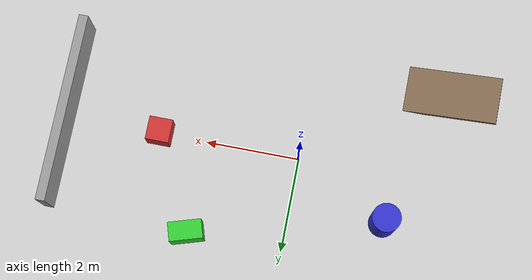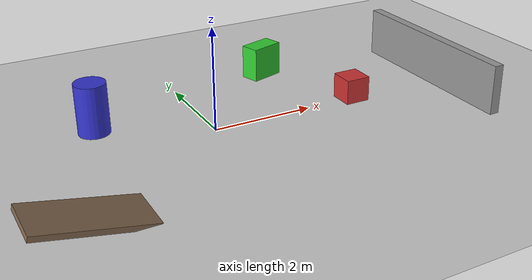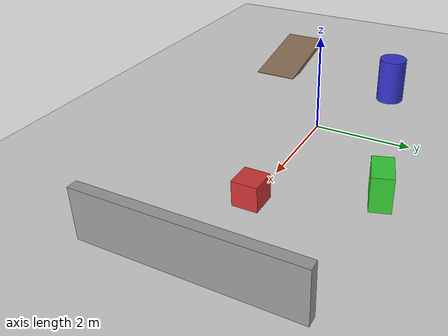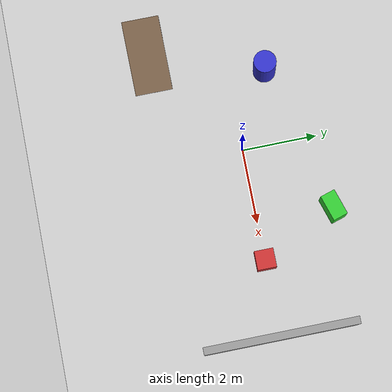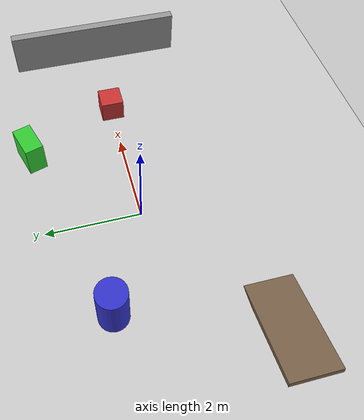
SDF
<?xml version="1.0" ?>
<sdf version="1.6">
  <world name="go2_outdoor_world">

    <!-- Physics settings optimized for legged robots -->
    <physics type="ode">
      <max_step_size>0.002</max_step_size>
      <real_time_factor>1</real_time_factor>
      <real_time_update_rate>500</real_time_update_rate>
      <ode>
        <solver>
          <type>quick</type>
          <iters>50</iters>
          <sor>1.3</sor>
        </solver>
        <constraints>
          <cfm>0.0</cfm>
          <erp>0.2</erp>
          <contact_max_correcting_vel>100</contact_max_correcting_vel>
          <contact_surface_layer>0.001</contact_surface_layer>
        </constraints>
      </ode>
    </physics>

    <!-- Lighting -->
    <include>
      <uri>model://sun</uri>
    </include>

    <!-- Ground Plane -->
    <include>
      <uri>model://ground_plane</uri>
    </include>

    <!-- Scene settings -->
    <scene>
      <ambient>0.5 0.5 0.5 1</ambient>
      <background>0.3 0.5 0.8 1</background>
      <shadows>true</shadows>
      <sky>
        <clouds>
          <speed>12</speed>
        </clouds>
      </sky>
    </scene>

    <!-- Gravity -->
    <gravity>0 0 -9.81</gravity>

    <!-- OBSTACLES                                                    -->

    <!-- Box obstacle 1 -->
    <model name="box1">
      <static>true</static>
      <pose>3 0 0.25 0 0 0</pose>
      <link name="link">
        <collision name="collision">
          <geometry>
            <box>
              <size>0.5 0.5 0.5</size>
            </box>
          </geometry>
        </collision>
        <visual name="visual">
          <geometry>
            <box>
              <size>0.5 0.5 0.5</size>
            </box>
          </geometry>
          <material>
            <ambient>0.8 0.2 0.2 1</ambient>
            <diffuse>0.8 0.2 0.2 1</diffuse>
          </material>
        </visual>
      </link>
    </model>

    <!-- Box obstacle 2 -->
    <model name="box2">
      <static>true</static>
      <pose>2 2 0.35 0 0 0.3</pose>
      <link name="link">
        <collision name="collision">
          <geometry>
            <box>
              <size>0.7 0.4 0.7</size>
            </box>
          </geometry>
        </collision>
        <visual name="visual">
          <geometry>
            <box>
              <size>0.7 0.4 0.7</size>
            </box>
          </geometry>
          <material>
            <ambient>0.2 0.8 0.2 1</ambient>
            <diffuse>0.2 0.8 0.2 1</diffuse>
          </material>
        </visual>
      </link>
    </model>

    <!-- Cylinder obstacle -->
    <model name="cylinder1">
      <static>true</static>
      <pose>-2 1 0.5 0 0 0</pose>
      <link name="link">
        <collision name="collision">
          <geometry>
            <cylinder>
              <radius>0.3</radius>
              <length>1.0</length>
            </cylinder>
          </geometry>
        </collision>
        <visual name="visual">
          <geometry>
            <cylinder>
              <radius>0.3</radius>
              <length>1.0</length>
            </cylinder>
          </geometry>
          <material>
            <ambient>0.2 0.2 0.8 1</ambient>
            <diffuse>0.2 0.2 0.8 1</diffuse>
          </material>
        </visual>
      </link>
    </model>

    <!-- Wall -->
    <model name="wall1">
      <static>true</static>
      <pose>5 0 0.5 0 0 0</pose>
      <link name="link">
        <collision name="collision">
          <geometry>
            <box>
              <size>0.2 4 1</size>
            </box>
          </geometry>
        </collision>
        <visual name="visual">
          <geometry>
            <box>
              <size>0.2 4 1</size>
            </box>
          </geometry>
          <material>
            <ambient>0.6 0.6 0.6 1</ambient>
            <diffuse>0.6 0.6 0.6 1</diffuse>
          </material>
        </visual>
      </link>
    </model>

    <!-- Ramp -->
    <model name="ramp1">
      <static>true</static>
      <pose>-3 -2 0.15 0 0.2 0</pose>
      <link name="link">
        <collision name="collision">
          <geometry>
            <box>
              <size>2 1 0.1</size>
            </box>
          </geometry>
          <surface>
            <friction>
              <ode>
                <mu>0.8</mu>
                <mu2>0.8</mu2>
              </ode>
            </friction>
          </surface>
        </collision>
        <visual name="visual">
          <geometry>
            <box>
              <size>2 1 0.1</size>
            </box>
          </geometry>
          <material>
            <ambient>0.5 0.4 0.3 1</ambient>
            <diffuse>0.5 0.4 0.3 1</diffuse>
          </material>
        </visual>
      </link>
    </model>

  </world>
</sdf>
